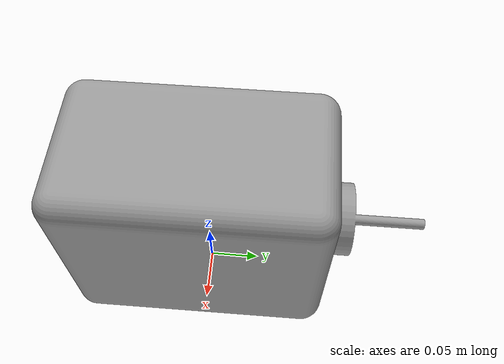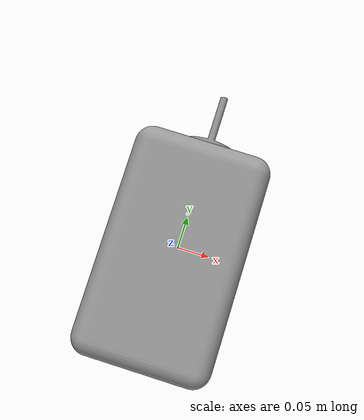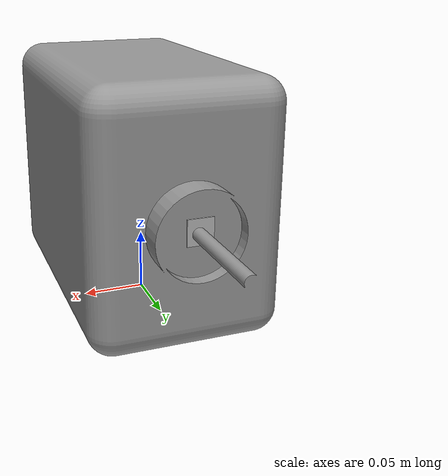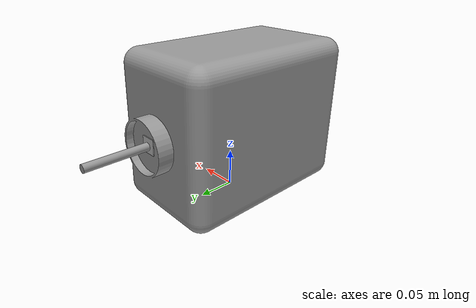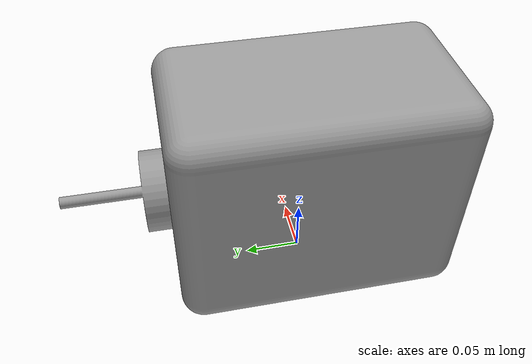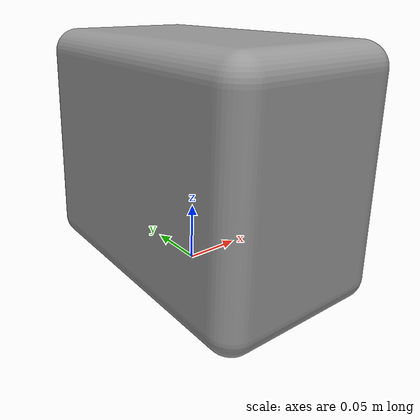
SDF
<?xml version="1.0" ?>
<sdf version="1.5">
  <model name="motor">
    <pose>0 0 0.1 0 0 0</pose>
    <link name="link">
      <pose>0.0 0 0.0 0 0 1.57079632679</pose>
      <self_collide>false</self_collide>
      <inertial>
        <mass>3</mass>
        <inertia>
          <ixx>0.01</ixx>
          <ixy>0</ixy>
          <ixz>0</ixz>
          <iyy>0.01</iyy>
          <iyz>0</iyz>
          <izz>0.01</izz>
        </inertia>
      </inertial>

      <collision name="collision">
        <pose>0 0 0.0 0 0 0</pose>
        <geometry>
          <mesh>
            <uri>model://motor/meshes/motor.dae</uri>
            <scale>0.01 0.01 0.01</scale>
          </mesh>
        </geometry>
      </collision>
      <visual name="visual">
        <pose>0 0 0.0 0 0 0</pose>
        <geometry>
          <mesh>
            <uri>model://motor/meshes/motor.dae</uri>
            <scale>0.01 0.01 0.01</scale>
          </mesh>
        </geometry>
        <material>
          <script>
            <uri>file://media/materials/scripts/gazebo.material</uri>
            <name>Gazebo/Grey</name>
          </script>
        </material>
      </visual>
    </link>

    <link name="motor_core_link">
      <pose>0.0 0 0.0 0 0 0</pose>
      <self_collide>false</self_collide>
      <gravity>false</gravity>
      <inertial>
        <mass>0.1</mass>
        <inertia>
          <ixx>0.001</ixx>
          <ixy>0</ixy>
          <ixz>0</ixz>
          <iyy>0.001</iyy>
          <iyz>0</iyz>
          <izz>0.001</izz>
        </inertia>
      </inertial>
      <collision name="collision">
        <pose>0.0 0 0.0 1.57079632679 0 0</pose>
        <geometry>
          <cylinder>
            <radius>0.05</radius>
            <length>0.05</length>
          </cylinder>
        </geometry>
      </collision>
      <visual name="visual">
        <pose>0.0 0 0.0 1.57079632679 0 0</pose>
        <geometry>
          <cylinder>
            <radius>0.05</radius>
            <length>0.05</length>
          </cylinder>
        </geometry>
        <material>
          <script>
            <uri>file://media/materials/scripts/gazebo.material</uri>
            <name>Gazebo/Grey</name>
          </script>
        </material>
      </visual>
    </link>

    <link name="motor_shaft_link">
      <pose>0.0 0 0.0 0 0 0</pose>
      <self_collide>false</self_collide>
      <gravity>false</gravity>
      <inertial>
        <mass>0.05</mass>
        <inertia>
          <ixx>0.0001</ixx>
          <ixy>0</ixy>
          <ixz>0</ixz>
          <iyy>0.0001</iyy>
          <iyz>0</iyz>
          <izz>0.0003</izz>
        </inertia>
      </inertial>
      <visual name='debug_vis'>
        <pose>0.0 0.12 0.0 0 0.0 0.0</pose>
        <geometry>
          <box>
            <size>.02 .02 .02</size>
          </box>
        </geometry>
      </visual>
      <collision name="collision">
        <pose>0.0 0 0.0 1.57079632679 0 0</pose>
        <geometry>
          <cylinder>
            <radius>0.005</radius>
            <length>0.20</length>
          </cylinder>
        </geometry>
      </collision>
      <visual name="visual">
        <pose>0.0 0 0.0 1.57079632679 0 0</pose>
        <geometry>
          <cylinder>
            <radius>0.005</radius>
            <length>0.20</length>
          </cylinder>
        </geometry>
        <material>
          <script>
            <uri>file://media/materials/scripts/gazebo.material</uri>
            <name>Gazebo/Wood</name>
          </script>
        </material>
      </visual>
      <velocity_decay>
        <angular>0.0001</angular>
      </velocity_decay>
    </link>

    <joint name="motor_shaft_joint" type="revolute">
      <parent>motor_core_link</parent>
      <child>motor_shaft_link</child>
      <axis>
        <xyz>0 1 0</xyz>
        <limit>
          <lower>-1000000</lower>
          <upper>1000000</upper>
        </limit>
        <dynamics>
          <friction>0.000001</friction>
          <damping>0.0001</damping>
        </dynamics>
      </axis>
    </joint>

    <joint name="motor_joint" type="fixed">
      <parent>motor_core_link</parent>
      <child>link</child>
    </joint>

    <plugin filename="libMotorPlugin.so" name="motor">
      <port>
        <name>shaft</name>
        <type>mechanical</type>
      </port>
      <port>
        <name>connector0</name>
        <type>electrical</type>
      </port>
      <port>
        <name>connector1</name>
        <type>electrical</type>
      </port>

      <properties>
        <resistance>5</resistance>
        <back_emf>0.0064</back_emf>
        <torque_constant>0.0064</torque_constant>
      </properties>

      <shaft_joint>motor_shaft_joint</shaft_joint>
    </plugin>
  </model>
</sdf>
